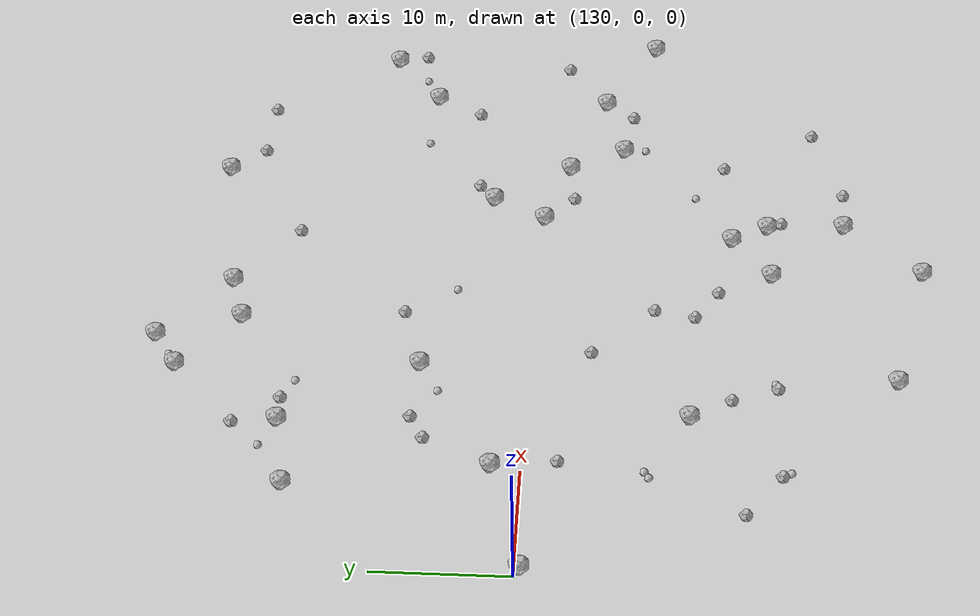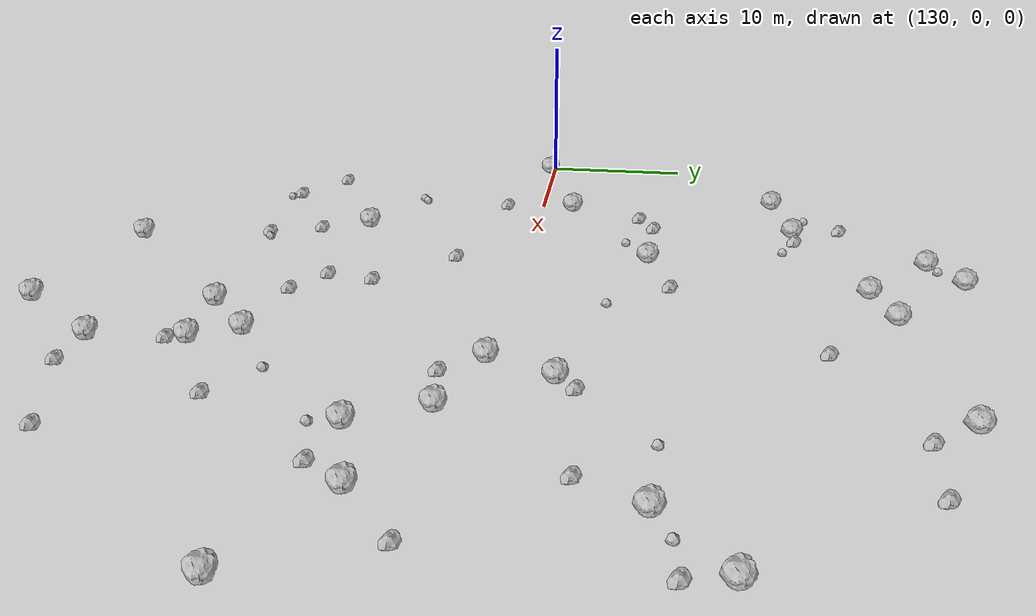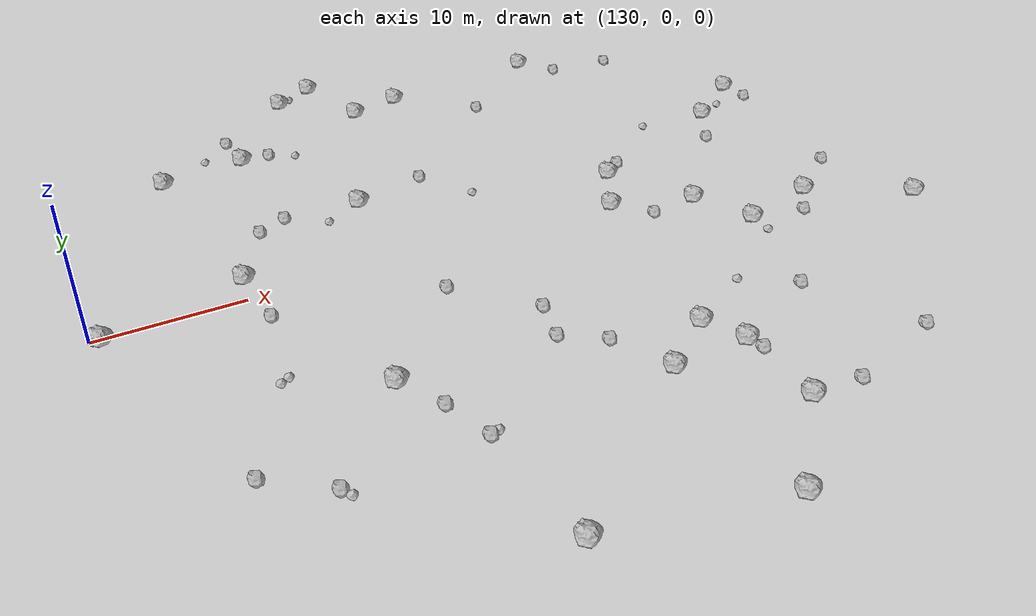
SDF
<sdf version="1.6">
 <world name="default">
  <include><uri>model://sun</uri></include>
  <model name="rock1_4_2">
   <include><uri>model://rock1</uri><pose>171.84828461737362 24.52399401856507 0.5 0 0 0</pose></include>
  </model>
  <model name="rock1_4_3">
   <include><uri>model://rock1</uri><pose>181.37307376886082 8.735148919983246 0.5 0 0 0</pose></include>
  </model>
  <model name="rock1_4_4">
   <include><uri>model://rock1</uri><pose>150.12923440911152 -27.109001931584352 0.5 0 0 0</pose></include>
  </model>
  <model name="rock1_4_5">
   <include><uri>model://rock1</uri><pose>167.0780559052562 -23.54195719817402 0.5 0 0 0</pose></include>
  </model>
  <model name="rock1_4_6">
   <include><uri>model://rock1</uri><pose>165.16981024372552 -14.943487820173843 0.5 0 0 0</pose></include>
  </model>
  <model name="rock1_4_7">
   <include><uri>model://rock1</uri><pose>169.15090872867563 3.5453378013256085 0.5 0 0 0</pose></include>
  </model>
  <model name="rock1_4_8">
   <include><uri>model://rock1</uri><pose>155.0046166087598 21.664194389133506 0.5 0 0 0</pose></include>
  </model>
  <model name="rock1_4_9">
   <include><uri>model://rock1</uri><pose>173.11085509177968 -2.2599214973149664 0.5 0 0 0</pose></include>
  </model>
  <model name="rock1_4_10">
   <include><uri>model://rock1</uri><pose>144.30122543874276 17.880526958315357 0.5 0 0 0</pose></include>
  </model>
  <model name="rock1_4_11">
   <include><uri>model://rock1</uri><pose>188.5208048026613 -8.711649782537098 0.5 0 0 0</pose></include>
  </model>
  <model name="rock1_4_12">
   <include><uri>model://rock1</uri><pose>186.0956348015639 12.306974017656643 0.5 0 0 0</pose></include>
  </model>
  <model name="rock1_4_13">
   <include><uri>model://rock1</uri><pose>167.07432077276022 -0.4615116320916073 0.5 0 0 0</pose></include>
  </model>
  <model name="rock1_4_14">
   <include><uri>model://rock1</uri><pose>150.49722523943754 7.9909408190188245 0.5 0 0 0</pose></include>
  </model>
  <model name="rock1_4_15">
   <include><uri>model://rock1</uri><pose>181.2543257546904 -4.87679199427647 0.5 0 0 0</pose></include>
  </model>
  <model name="rock1_4_16">
   <include><uri>model://rock1</uri><pose>166.7225440849731 -17.667498014151118 0.5 0 0 0</pose></include>
  </model>
  <model name="rock1_4_17">
   <include><uri>model://rock1</uri><pose>158.94287211431998 22.755946092702395 0.5 0 0 0</pose></include>
  </model>
  <model name="rock1_4_18">
   <include><uri>model://rock1</uri><pose>149.66090968409006 26.003438848429866 0.5 0 0 0</pose></include>
  </model>
  <model name="rock1_4_19">
   <include><uri>model://rock1</uri><pose>175.4220957150784 -6.435386411247997 0.5 0 0 0</pose></include>
  </model>
  <model name="rock1_4_20">
   <include><uri>model://rock1</uri><pose>140.38416690769708 2.2165101420686923 0.5 0 0 0</pose></include>
  </model>
  <model name="rock1_4_21">
   <include><uri>model://rock1</uri><pose>161.99409139108297 -29.39386096385653 0.5 0 0 0</pose></include>
  </model>
  <model name="rock1_4_22">
   <include><uri>model://rock1</uri><pose>138.02256517463908 16.879546749680884 0.5 0 0 0</pose></include>
  </model>
  <model name="rock1_4_23">
   <include><uri>model://rock1</uri><pose>152.7440443284375 27.820828455162598 0.5 0 0 0</pose></include>
  </model>
  <model name="rock1_4_24">
   <include><uri>model://rock1</uri><pose>161.24080768654744 -17.956640509632454 0.5 0 0 0</pose></include>
  </model>
  <model name="rock1_4_25">
   <include><uri>model://rock1</uri><pose>130.77344989428406 -0.34657194444809036 0.5 0 0 0</pose></include>
  </model>
  <model name="rock1_4_26">
   <include><uri>model://rock1</uri><pose>145.80432809934427 -11.91505018505795 0.5 0 0 0</pose></include>
  </model>
  <model name="rock2_4_0">
   <include><uri>model://rock2</uri><pose>174.03924156988052 21.95727412963052 0.3 0 0 0</pose></include>
  </model>
  <model name="rock2_4_1">
   <include><uri>model://rock2</uri><pose>179.2975677309402 5.203494106830583 0.3 0 0 0</pose></include>
  </model>
  <model name="rock2_4_2">
   <include><uri>model://rock2</uri><pose>186.511911605345 10.019672237722887 0.3 0 0 0</pose></include>
  </model>
  <model name="rock2_4_3">
   <include><uri>model://rock2</uri><pose>146.38304968592385 17.84881854770162 0.3 0 0 0</pose></include>
  </model>
  <model name="rock2_4_4">
   <include><uri>model://rock2</uri><pose>156.2288426109959 -12.212014276144874 0.3 0 0 0</pose></include>
  </model>
  <model name="rock2_4_5">
   <include><uri>model://rock2</uri><pose>179.42511206725968 -7.111066808937338 0.3 0 0 0</pose></include>
  </model>
  <model name="rock2_4_6">
   <include><uri>model://rock2</uri><pose>144.86844957563105 8.26381795713607 0.3 0 0 0</pose></include>
  </model>
  <model name="rock2_4_7">
   <include><uri>model://rock2</uri><pose>143.79410677333283 21.131208150678425 0.3 0 0 0</pose></include>
  </model>
  <model name="rock2_4_8">
   <include><uri>model://rock2</uri><pose>147.53949633684877 -14.971065860390045 0.3 0 0 0</pose></include>
  </model>
  <model name="rock2_4_9">
   <include><uri>model://rock2</uri><pose>152.07585225197855 -4.600298134352858 0.3 0 0 0</pose></include>
  </model>
  <model name="rock2_4_10">
   <include><uri>model://rock2</uri><pose>173.4300912894044 -14.353426735651201 0.3 0 0 0</pose></include>
  </model>
  <model name="rock2_4_11">
   <include><uri>model://rock2</uri><pose>156.833489508879 -9.197985774548382 0.3 0 0 0</pose></include>
  </model>
  <model name="rock2_4_12">
   <include><uri>model://rock2</uri><pose>177.75266562895945 -21.326330232851454 0.3 0 0 0</pose></include>
  </model>
  <model name="rock2_4_13">
   <include><uri>model://rock2</uri><pose>140.04407941600195 -18.57685236554799 0.3 0 0 0</pose></include>
  </model>
  <model name="rock2_4_14">
   <include><uri>model://rock2</uri><pose>142.7780847282984 7.209050730865677 0.3 0 0 0</pose></include>
  </model>
  <model name="rock2_4_15">
   <include><uri>model://rock2</uri><pose>167.07174718088032 -18.76412907924768 0.3 0 0 0</pose></include>
  </model>
  <model name="rock2_4_16">
   <include><uri>model://rock2</uri><pose>179.16418913616812 21.654784196544988 0.3 0 0 0</pose></include>
  </model>
  <model name="rock2_4_17">
   <include><uri>model://rock2</uri><pose>164.61488382640147 18.19654890040303 0.3 0 0 0</pose></include>
  </model>
  <model name="rock2_4_18">
   <include><uri>model://rock2</uri><pose>148.8306823044772 -18.358284558414727 0.3 0 0 0</pose></include>
  </model>
  <model name="rock2_4_19">
   <include><uri>model://rock2</uri><pose>158.99770219021605 -13.969420254114894 0.3 0 0 0</pose></include>
  </model>
  <model name="rock2_4_20">
   <include><uri>model://rock2</uri><pose>155.83731686680608 9.476445704795537 0.3 0 0 0</pose></include>
  </model>
  <model name="rock2_4_21">
   <include><uri>model://rock2</uri><pose>169.30364379552816 -2.7311612209318845 0.3 0 0 0</pose></include>
  </model>
  <model name="rock2_4_22">
   <include><uri>model://rock2</uri><pose>140.83503791653834 -2.562105953645549 0.3 0 0 0</pose></include>
  </model>
  <model name="rock2_4_23">
   <include><uri>model://rock2</uri><pose>136.23646968354925 -15.960092642250478 0.3 0 0 0</pose></include>
  </model>
  <model name="rock2_4_24">
   <include><uri>model://rock2</uri><pose>185.41087108400984 -1.75523809663526 0.3 0 0 0</pose></include>
  </model>
  <model name="rock2_4_25">
   <include><uri>model://rock2</uri><pose>170.5530793793421 4.716935818459326 0.3 0 0 0</pose></include>
  </model>
  <model name="rock2_4_26">
   <include><uri>model://rock2</uri><pose>170.60238944943706 -23.62165022111401 0.3 0 0 0</pose></include>
  </model>
  <model name="rock3_4_0">
   <include><uri>model://rock3</uri><pose>175.46896281312007 -8.160371327153626 0.2 0 0 0</pose></include>
  </model>
  <model name="rock3_4_1">
   <include><uri>model://rock3</uri><pose>139.59706540594496 -9.113471761230048 0.2 0 0 0</pose></include>
  </model>
  <model name="rock3_4_2">
   <include><uri>model://rock3</uri><pose>183.5209466545901 9.736363715130643 0.2 0 0 0</pose></include>
  </model>
  <model name="rock3_4_3">
   <include><uri>model://rock3</uri><pose>141.5899425196508 18.90732348498004 0.2 0 0 0</pose></include>
  </model>
  <model name="rock3_4_4">
   <include><uri>model://rock3</uri><pose>140.16768251109005 -8.77635212634074 0.2 0 0 0</pose></include>
  </model>
  <model name="rock3_4_5">
   <include><uri>model://rock3</uri><pose>175.6556895791755 9.019652544554546 0.2 0 0 0</pose></include>
  </model>
  <model name="rock3_4_6">
   <include><uri>model://rock3</uri><pose>169.88569339852316 -12.183865571097627 0.2 0 0 0</pose></include>
  </model>
  <model name="rock3_4_7">
   <include><uri>model://rock3</uri><pose>150.61226335136848 26.551601840964445 0.2 0 0 0</pose></include>
  </model>
  <model name="rock3_4_8">
   <include><uri>model://rock3</uri><pose>140.46218846916804 -19.247303597077092 0.2 0 0 0</pose></include>
  </model>
  <model name="rock3_4_9">
   <include><uri>model://rock3</uri><pose>148.27282044381795 16.915300195532666 0.2 0 0 0</pose></include>
  </model>
  <model name="rock3_4_10">
   <include><uri>model://rock3</uri><pose>147.6606496246916 6.4358878192817315 0.2 0 0 0</pose></include>
  </model>
  <model name="rock3_4_11">
   <include><uri>model://rock3</uri><pose>158.57844090948052 5.670772395623231 0.2 0 0 0</pose></include>
  </model>
  <model name="rock3_4_12">
   <include><uri>model://rock3</uri><pose>149.4312213331743 -18.198230959619124 0.2 0 0 0</pose></include>
  </model>
 </world>
</sdf>
